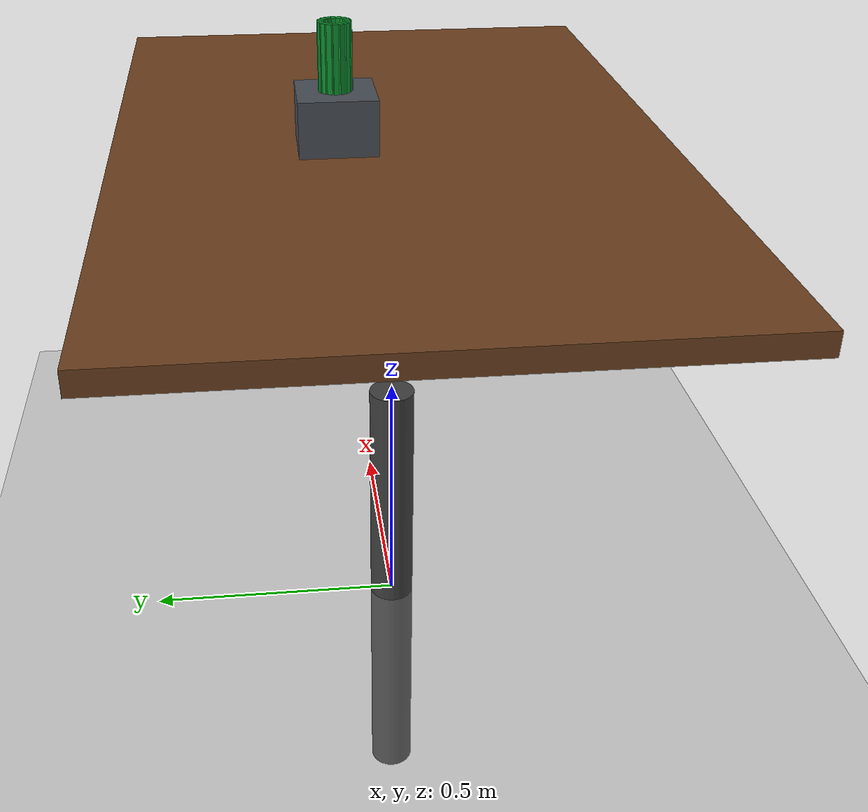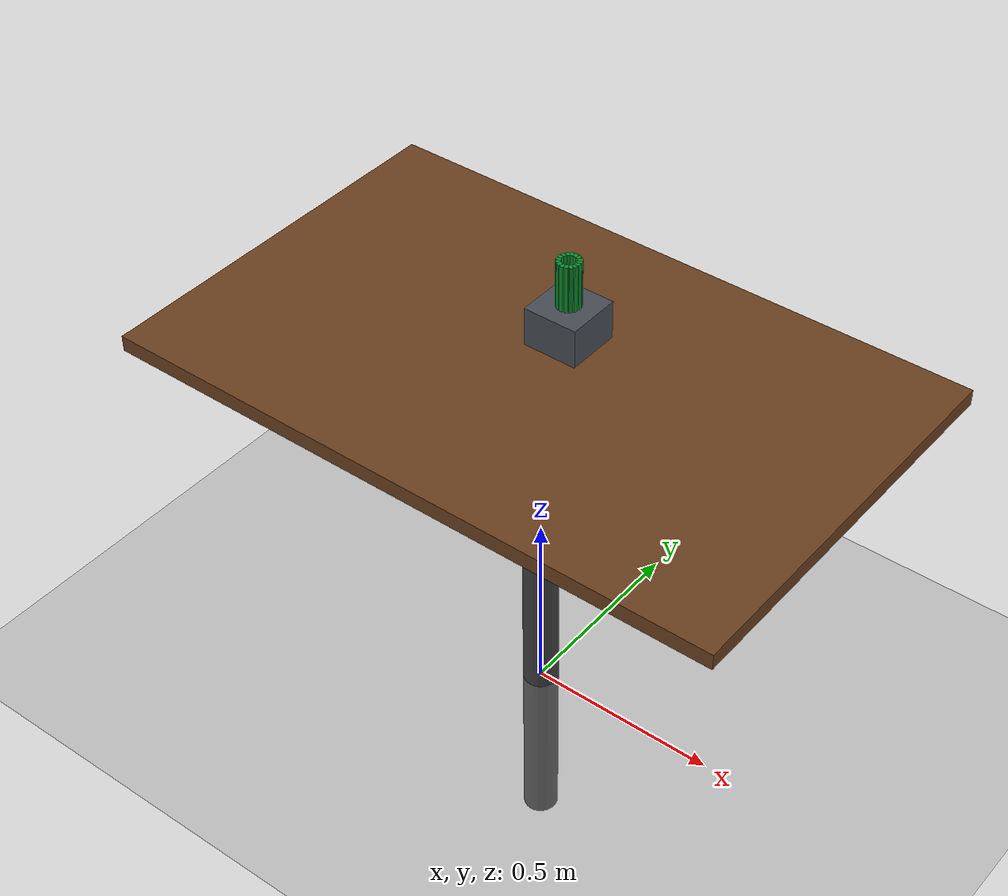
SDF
<?xml version="1.0"?>
<sdf version="1.6">
  <world name="dual_xarm_table_ignition">
    <gravity>0 0 -9.81</gravity>

    <plugin filename="libignition-gazebo-physics-system.so"
            name="ignition::gazebo::systems::Physics"/>
    <plugin filename="libignition-gazebo-user-commands-system.so"
            name="ignition::gazebo::systems::UserCommands"/>
    <plugin filename="libignition-gazebo-scene-broadcaster-system.so"
            name="ignition::gazebo::systems::SceneBroadcaster"/>
    <plugin filename="libignition-gazebo-sensors-system.so"
            name="ignition::gazebo::systems::Sensors">
      <render_engine>ogre2</render_engine>
    </plugin>

    <light type="directional" name="sun">
      <cast_shadows>true</cast_shadows>
      <pose>0 0 8 0 0 0</pose>
      <diffuse>0.8 0.8 0.8 1</diffuse>
      <specular>0.2 0.2 0.2 1</specular>
      <direction>-0.4 0.2 -0.9</direction>
    </light>

    <model name="ground_plane">
      <static>true</static>
      <link name="link">
        <collision name="collision">
          <geometry>
            <plane><normal>0 0 1</normal><size>100 100</size></plane>
          </geometry>
        </collision>
        <visual name="visual">
          <geometry>
            <plane><normal>0 0 1</normal><size>100 100</size></plane>
          </geometry>
          <material>
            <ambient>0.55 0.55 0.55 1</ambient>
            <diffuse>0.55 0.55 0.55 1</diffuse>
          </material>
        </visual>
      </link>
    </model>

    <model name="work_table">
      <static>true</static>
      <link name="table_top">
        <inertial>
          <mass>50</mass>
          <inertia>
            <ixx>3</ixx><iyy>3</iyy><izz>3</izz>
            <ixy>0</ixy><ixz>0</ixz><iyz>0</iyz>
          </inertia>
        </inertial>
        <collision name="top_collision">
          <pose>0 0 0.98 0 0 0</pose>
          <geometry><box><size>1.6 1.0 0.04</size></box></geometry>
          <surface>
            <friction><ode><mu>0.7</mu><mu2>0.7</mu2></ode></friction>
          </surface>
        </collision>
        <visual name="top_visual">
          <pose>0 0 0.98 0 0 0</pose>
          <geometry><box><size>1.6 1.0 0.04</size></box></geometry>
          <material>
            <ambient>0.42 0.25 0.12 1</ambient>
            <diffuse>0.42 0.25 0.12 1</diffuse>
          </material>
        </visual>
      </link>

      <link name="leg_front_left">
        <collision name="collision">
          <geometry><cylinder><radius>0.045</radius><length>0.98</length></cylinder></geometry>
        </collision>
        <visual name="visual">
          <geometry><cylinder><radius>0.045</radius><length>0.98</length></cylinder></geometry>
          <material><ambient>0.25 0.25 0.25 1</ambient></material>
        </visual>
      </link>
      <joint name="leg_front_left_joint" type="fixed">
        <parent>table_top</parent><child>leg_front_left</child>
        <pose>-0.70 -0.40 0.49 0 0 0</pose>
      </joint>

      <link name="leg_front_right">
        <collision name="collision">
          <geometry><cylinder><radius>0.045</radius><length>0.98</length></cylinder></geometry>
        </collision>
        <visual name="visual">
          <geometry><cylinder><radius>0.045</radius><length>0.98</length></cylinder></geometry>
          <material><ambient>0.25 0.25 0.25 1</ambient></material>
        </visual>
      </link>
      <joint name="leg_front_right_joint" type="fixed">
        <parent>table_top</parent><child>leg_front_right</child>
        <pose>0.70 -0.40 0.49 0 0 0</pose>
      </joint>

      <link name="leg_back_left">
        <collision name="collision">
          <geometry><cylinder><radius>0.045</radius><length>0.98</length></cylinder></geometry>
        </collision>
        <visual name="visual">
          <geometry><cylinder><radius>0.045</radius><length>0.98</length></cylinder></geometry>
          <material><ambient>0.25 0.25 0.25 1</ambient></material>
        </visual>
      </link>
      <joint name="leg_back_left_joint" type="fixed">
        <parent>table_top</parent><child>leg_back_left</child>
        <pose>-0.70 0.40 0.49 0 0 0</pose>
      </joint>

      <link name="leg_back_right">
        <collision name="collision">
          <geometry><cylinder><radius>0.045</radius><length>0.98</length></cylinder></geometry>
        </collision>
        <visual name="visual">
          <geometry><cylinder><radius>0.045</radius><length>0.98</length></cylinder></geometry>
          <material><ambient>0.25 0.25 0.25 1</ambient></material>
        </visual>
      </link>
      <joint name="leg_back_right_joint" type="fixed">
        <parent>table_top</parent><child>leg_back_right</child>
        <pose>0.70 0.40 0.49 0 0 0</pose>
      </joint>
    </model>

    <include>
      <uri>model://workpiece_pedestal</uri>
      <name>workpiece_pedestal</name>
      <pose>0 0.10 1.05 0 0 0</pose>
    </include>

    <include>
      <uri>model://hollow_cylinder</uri>
      <name>hollow_cylinder_workpiece</name>
      <pose>0 0.10 1.16 0 0 0</pose>
    </include>

    <physics type="dartsim" name="1ms">
      <max_step_size>0.001</max_step_size>
      <real_time_factor>1</real_time_factor>
      <real_time_update_rate>1000</real_time_update_rate>
      <dartsim>
        <solver_type>pgs</solver_type>
        <collision_detector>fcl</collision_detector>
      </dartsim>
    </physics>
  </world>
</sdf>

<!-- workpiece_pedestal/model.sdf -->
<sdf version="1.6">
  <model name="workpiece_pedestal">
    <static>true</static>
    <link name="body">
      <collision name="collision">
        <geometry><box><size>0.14 0.14 0.10</size></box></geometry>
         <surface><friction><ode><mu>1.0</mu><mu2>1.0</mu2><slip1>0.0</slip1><slip2>0.0</slip2></ode></friction></surface>
      </collision>
      <visual name="visual">
        <geometry><box><size>0.14 0.14 0.10</size></box></geometry>
        <material>
          <ambient>0.18 0.20 0.22 1</ambient>
          <diffuse>0.28 0.30 0.33 1</diffuse>
        </material>
      </visual>
    </link>
  </model>
</sdf>

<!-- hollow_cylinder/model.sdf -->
<sdf version="1.6">
  <model name="hollow_cylinder">
    <static>false</static>
    <self_collide>false</self_collide>
    <!-- Let the settled held workpiece sleep; contact wakes it when R_ moves. -->
    <allow_auto_disable>true</allow_auto_disable>
    <link name="body">
      <inertial>
        <mass>0.18</mass>
        <inertia><ixx>0.0008</ixx><iyy>0.0008</iyy><izz>0.00035</izz><ixy>0</ixy><ixz>0</ixz><iyz>0</iyz></inertia>
      </inertial>
      <!-- Sixteen box segments approximate an annular wall with outer radius 0.030 m and inner radius 0.018 m. -->
      <collision name="collision_segment_00"><pose>0.0240 0 0 0 0 0</pose><geometry><box><size>0.012 0.009 0.12</size></box></geometry><surface><friction><ode><mu>1.5</mu><mu2>1.5</mu2><slip1>0.0</slip1><slip2>0.0</slip2></ode></friction></surface></collision>
      <visual name="visual_segment_00"><pose>0.0240 0 0 0 0 0</pose><geometry><box><size>0.012 0.009 0.12</size></box></geometry><material><ambient>0.05 0.35 0.12 1</ambient><diffuse>0.05 0.55 0.18 1</diffuse></material></visual>
      <collision name="collision_segment_01"><pose>0.0222 0.0092 0 0 0 0.3927</pose><geometry><box><size>0.012 0.009 0.12</size></box></geometry><surface><friction><ode><mu>1.5</mu><mu2>1.5</mu2><slip1>0.0</slip1><slip2>0.0</slip2></ode></friction></surface></collision>
      <visual name="visual_segment_01"><pose>0.0222 0.0092 0 0 0 0.3927</pose><geometry><box><size>0.012 0.009 0.12</size></box></geometry><material><ambient>0.05 0.35 0.12 1</ambient><diffuse>0.05 0.55 0.18 1</diffuse></material></visual>
      <collision name="collision_segment_02"><pose>0.0170 0.0170 0 0 0 0.7854</pose><geometry><box><size>0.012 0.009 0.12</size></box></geometry><surface><friction><ode><mu>1.5</mu><mu2>1.5</mu2><slip1>0.0</slip1><slip2>0.0</slip2></ode></friction></surface></collision>
      <visual name="visual_segment_02"><pose>0.0170 0.0170 0 0 0 0.7854</pose><geometry><box><size>0.012 0.009 0.12</size></box></geometry><material><ambient>0.05 0.35 0.12 1</ambient><diffuse>0.05 0.55 0.18 1</diffuse></material></visual>
      <collision name="collision_segment_03"><pose>0.0092 0.0222 0 0 0 1.1781</pose><geometry><box><size>0.012 0.009 0.12</size></box></geometry><surface><friction><ode><mu>1.5</mu><mu2>1.5</mu2><slip1>0.0</slip1><slip2>0.0</slip2></ode></friction></surface></collision>
      <visual name="visual_segment_03"><pose>0.0092 0.0222 0 0 0 1.1781</pose><geometry><box><size>0.012 0.009 0.12</size></box></geometry><material><ambient>0.05 0.35 0.12 1</ambient><diffuse>0.05 0.55 0.18 1</diffuse></material></visual>
      <collision name="collision_segment_04"><pose>0 0.0240 0 0 0 1.5708</pose><geometry><box><size>0.012 0.009 0.12</size></box></geometry><surface><friction><ode><mu>1.5</mu><mu2>1.5</mu2><slip1>0.0</slip1><slip2>0.0</slip2></ode></friction></surface></collision>
      <visual name="visual_segment_04"><pose>0 0.0240 0 0 0 1.5708</pose><geometry><box><size>0.012 0.009 0.12</size></box></geometry><material><ambient>0.05 0.35 0.12 1</ambient><diffuse>0.05 0.55 0.18 1</diffuse></material></visual>
      <collision name="collision_segment_05"><pose>-0.0092 0.0222 0 0 0 1.9635</pose><geometry><box><size>0.012 0.009 0.12</size></box></geometry><surface><friction><ode><mu>1.5</mu><mu2>1.5</mu2><slip1>0.0</slip1><slip2>0.0</slip2></ode></friction></surface></collision>
      <visual name="visual_segment_05"><pose>-0.0092 0.0222 0 0 0 1.9635</pose><geometry><box><size>0.012 0.009 0.12</size></box></geometry><material><ambient>0.05 0.35 0.12 1</ambient><diffuse>0.05 0.55 0.18 1</diffuse></material></visual>
      <collision name="collision_segment_06"><pose>-0.0170 0.0170 0 0 0 2.3562</pose><geometry><box><size>0.012 0.009 0.12</size></box></geometry><surface><friction><ode><mu>1.5</mu><mu2>1.5</mu2><slip1>0.0</slip1><slip2>0.0</slip2></ode></friction></surface></collision>
      <visual name="visual_segment_06"><pose>-0.0170 0.0170 0 0 0 2.3562</pose><geometry><box><size>0.012 0.009 0.12</size></box></geometry><material><ambient>0.05 0.35 0.12 1</ambient><diffuse>0.05 0.55 0.18 1</diffuse></material></visual>
      <collision name="collision_segment_07"><pose>-0.0222 0.0092 0 0 0 2.7489</pose><geometry><box><size>0.012 0.009 0.12</size></box></geometry><surface><friction><ode><mu>1.5</mu><mu2>1.5</mu2><slip1>0.0</slip1><slip2>0.0</slip2></ode></friction></surface></collision>
      <visual name="visual_segment_07"><pose>-0.0222 0.0092 0 0 0 2.7489</pose><geometry><box><size>0.012 0.009 0.12</size></box></geometry><material><ambient>0.05 0.35 0.12 1</ambient><diffuse>0.05 0.55 0.18 1</diffuse></material></visual>
      <collision name="collision_segment_08"><pose>-0.0240 0 0 0 0 3.1416</pose><geometry><box><size>0.012 0.009 0.12</size></box></geometry><surface><friction><ode><mu>1.5</mu><mu2>1.5</mu2><slip1>0.0</slip1><slip2>0.0</slip2></ode></friction></surface></collision>
      <visual name="visual_segment_08"><pose>-0.0240 0 0 0 0 3.1416</pose><geometry><box><size>0.012 0.009 0.12</size></box></geometry><material><ambient>0.05 0.35 0.12 1</ambient><diffuse>0.05 0.55 0.18 1</diffuse></material></visual>
      <collision name="collision_segment_09"><pose>-0.0222 -0.0092 0 0 0 3.5343</pose><geometry><box><size>0.012 0.009 0.12</size></box></geometry><surface><friction><ode><mu>1.5</mu><mu2>1.5</mu2><slip1>0.0</slip1><slip2>0.0</slip2></ode></friction></surface></collision>
      <visual name="visual_segment_09"><pose>-0.0222 -0.0092 0 0 0 3.5343</pose><geometry><box><size>0.012 0.009 0.12</size></box></geometry><material><ambient>0.05 0.35 0.12 1</ambient><diffuse>0.05 0.55 0.18 1</diffuse></material></visual>
      <collision name="collision_segment_10"><pose>-0.0170 -0.0170 0 0 0 3.9270</pose><geometry><box><size>0.012 0.009 0.12</size></box></geometry><surface><friction><ode><mu>1.5</mu><mu2>1.5</mu2><slip1>0.0</slip1><slip2>0.0</slip2></ode></friction></surface></collision>
      <visual name="visual_segment_10"><pose>-0.0170 -0.0170 0 0 0 3.9270</pose><geometry><box><size>0.012 0.009 0.12</size></box></geometry><material><ambient>0.05 0.35 0.12 1</ambient><diffuse>0.05 0.55 0.18 1</diffuse></material></visual>
      <collision name="collision_segment_11"><pose>-0.0092 -0.0222 0 0 0 4.3197</pose><geometry><box><size>0.012 0.009 0.12</size></box></geometry><surface><friction><ode><mu>1.5</mu><mu2>1.5</mu2><slip1>0.0</slip1><slip2>0.0</slip2></ode></friction></surface></collision>
      <visual name="visual_segment_11"><pose>-0.0092 -0.0222 0 0 0 4.3197</pose><geometry><box><size>0.012 0.009 0.12</size></box></geometry><material><ambient>0.05 0.35 0.12 1</ambient><diffuse>0.05 0.55 0.18 1</diffuse></material></visual>
      <collision name="collision_segment_12"><pose>0 -0.0240 0 0 0 4.7124</pose><geometry><box><size>0.012 0.009 0.12</size></box></geometry><surface><friction><ode><mu>1.5</mu><mu2>1.5</mu2><slip1>0.0</slip1><slip2>0.0</slip2></ode></friction></surface></collision>
      <visual name="visual_segment_12"><pose>0 -0.0240 0 0 0 4.7124</pose><geometry><box><size>0.012 0.009 0.12</size></box></geometry><material><ambient>0.05 0.35 0.12 1</ambient><diffuse>0.05 0.55 0.18 1</diffuse></material></visual>
      <collision name="collision_segment_13"><pose>0.0092 -0.0222 0 0 0 5.1051</pose><geometry><box><size>0.012 0.009 0.12</size></box></geometry><surface><friction><ode><mu>1.5</mu><mu2>1.5</mu2><slip1>0.0</slip1><slip2>0.0</slip2></ode></friction></surface></collision>
      <visual name="visual_segment_13"><pose>0.0092 -0.0222 0 0 0 5.1051</pose><geometry><box><size>0.012 0.009 0.12</size></box></geometry><material><ambient>0.05 0.35 0.12 1</ambient><diffuse>0.05 0.55 0.18 1</diffuse></material></visual>
      <collision name="collision_segment_14"><pose>0.0170 -0.0170 0 0 0 5.4978</pose><geometry><box><size>0.012 0.009 0.12</size></box></geometry><surface><friction><ode><mu>1.5</mu><mu2>1.5</mu2><slip1>0.0</slip1><slip2>0.0</slip2></ode></friction></surface></collision>
      <visual name="visual_segment_14"><pose>0.0170 -0.0170 0 0 0 5.4978</pose><geometry><box><size>0.012 0.009 0.12</size></box></geometry><material><ambient>0.05 0.35 0.12 1</ambient><diffuse>0.05 0.55 0.18 1</diffuse></material></visual>
      <collision name="collision_segment_15"><pose>0.0222 -0.0092 0 0 0 5.8905</pose><geometry><box><size>0.012 0.009 0.12</size></box></geometry><surface><friction><ode><mu>1.5</mu><mu2>1.5</mu2><slip1>0.0</slip1><slip2>0.0</slip2></ode></friction></surface></collision>
      <visual name="visual_segment_15"><pose>0.0222 -0.0092 0 0 0 5.8905</pose><geometry><box><size>0.012 0.009 0.12</size></box></geometry><material><ambient>0.05 0.35 0.12 1</ambient><diffuse>0.05 0.55 0.18 1</diffuse></material></visual>
    </link>
  </model>
</sdf>
